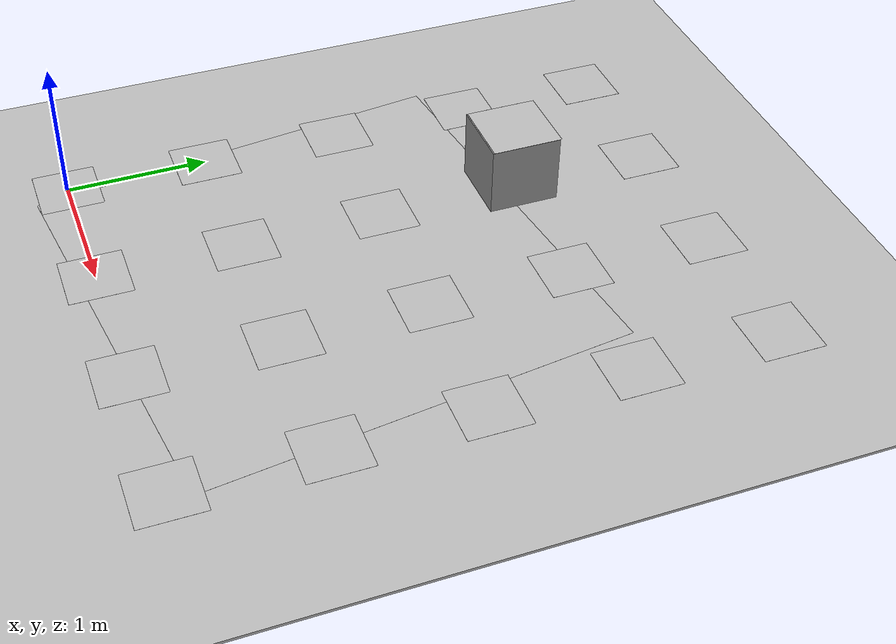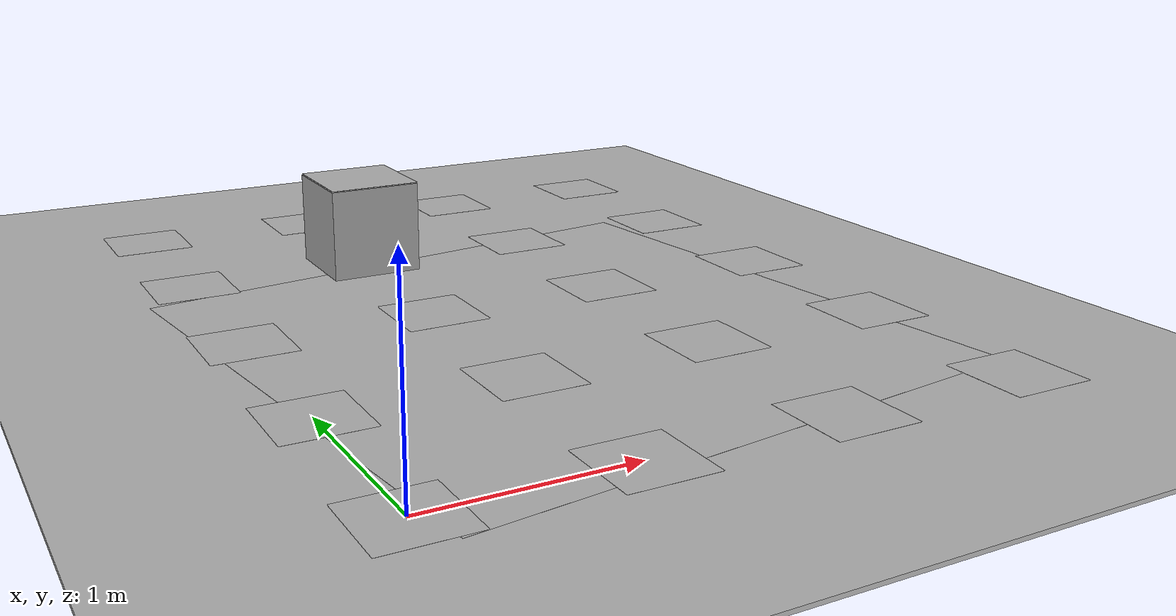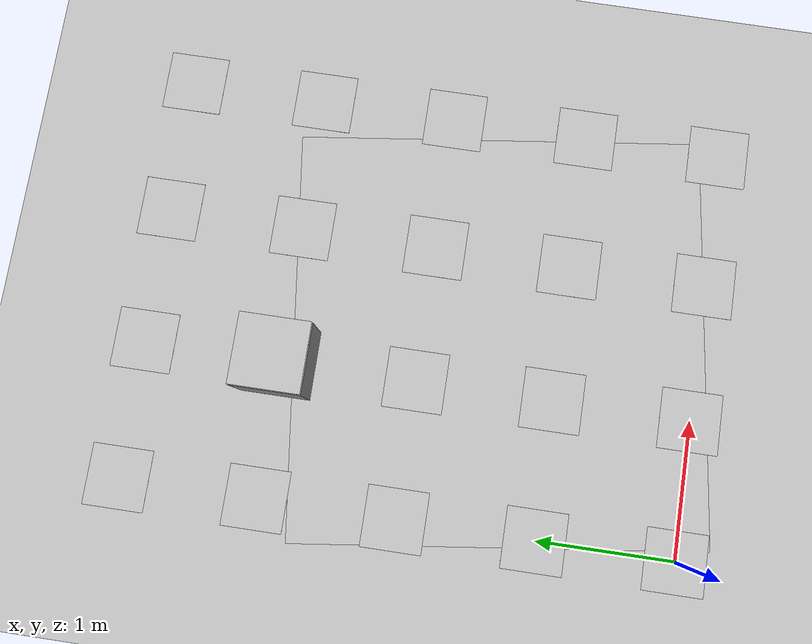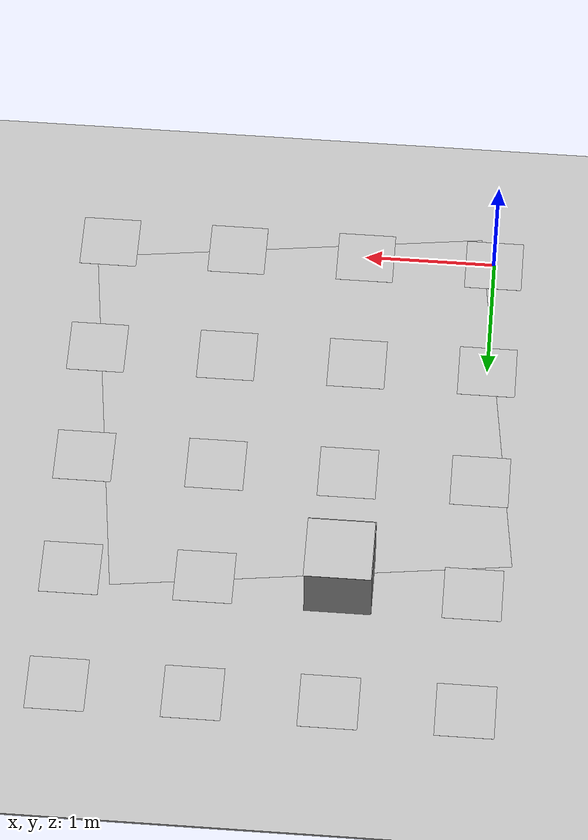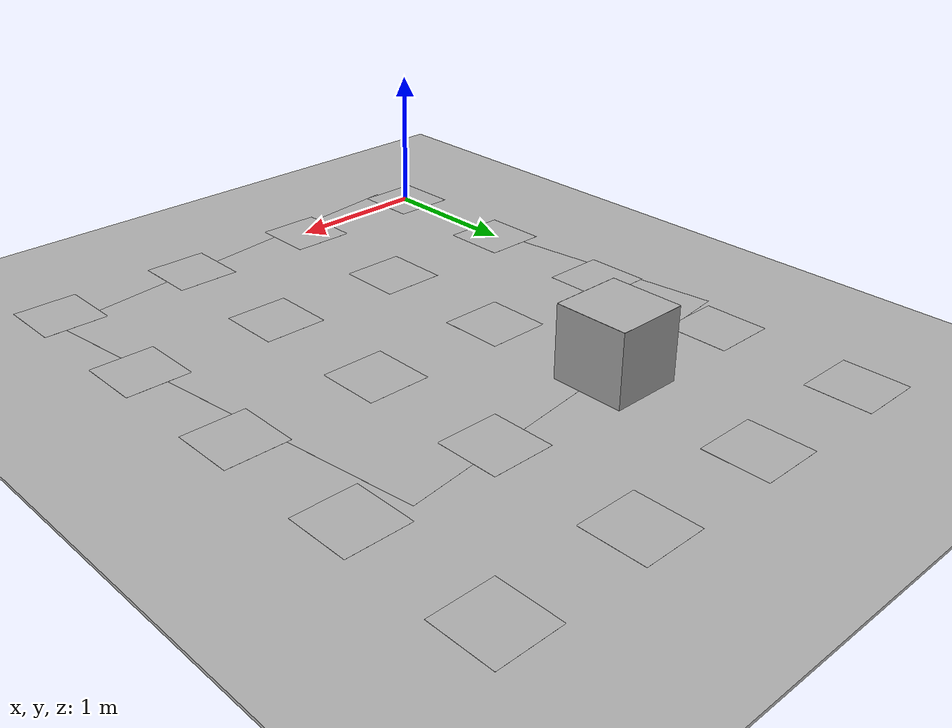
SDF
<sdf version="1.7">
 <world name="default">
  <model name="aruco_2_19">
   <static>1</static>
   <link name="aruco_2_19_link">
    <visual name="visual_marker_2_143">
     <pose>0 0 0 0 -0 1.5708</pose>
     <cast_shadows>0</cast_shadows>
     <geometry><box><size>0.44 0.44 0.001</size></box></geometry>
     <material>
      <script>
       <uri>model://aruco_nto_map_txt/materials/scripts</uri>
       <uri>model://aruco_nto_map_txt/materials/textures</uri>
       <name>aruco/marker_2_143</name>
      </script>
     </material>
    </visual>
    <visual name="visual_marker_2_142">
     <pose>1 0 0 0 -0 1.5708</pose>
     <cast_shadows>0</cast_shadows>
     <geometry><box><size>0.44 0.44 0.001</size></box></geometry>
     <material>
      <script>
       <uri>model://aruco_nto_map_txt/materials/scripts</uri>
       <uri>model://aruco_nto_map_txt/materials/textures</uri>
       <name>aruco/marker_2_142</name>
      </script>
     </material>
    </visual>
    <visual name="visual_marker_2_147">
     <pose>2 0 0 0 -0 1.5708</pose>
     <cast_shadows>0</cast_shadows>
     <geometry><box><size>0.44 0.44 0.001</size></box></geometry>
     <material>
      <script>
       <uri>model://aruco_nto_map_txt/materials/scripts</uri>
       <uri>model://aruco_nto_map_txt/materials/textures</uri>
       <name>aruco/marker_2_147</name>
      </script>
     </material>
    </visual>
    <visual name="visual_marker_2_128">
     <pose>3 0 0 0 -0 1.5708</pose>
     <cast_shadows>0</cast_shadows>
     <geometry><box><size>0.44 0.44 0.001</size></box></geometry>
     <material>
      <script>
       <uri>model://aruco_nto_map_txt/materials/scripts</uri>
       <uri>model://aruco_nto_map_txt/materials/textures</uri>
       <name>aruco/marker_2_128</name>
      </script>
     </material>
    </visual>
    <visual name="visual_marker_2_144">
     <pose>0 1 0 0 -0 1.5708</pose>
     <cast_shadows>0</cast_shadows>
     <geometry><box><size>0.44 0.44 0.001</size></box></geometry>
     <material>
      <script>
       <uri>model://aruco_nto_map_txt/materials/scripts</uri>
       <uri>model://aruco_nto_map_txt/materials/textures</uri>
       <name>aruco/marker_2_144</name>
      </script>
     </material>
    </visual>
    <visual name="visual_marker_2_157">
     <pose>1 1 0 0 -0 1.5708</pose>
     <cast_shadows>0</cast_shadows>
     <geometry><box><size>0.44 0.44 0.001</size></box></geometry>
     <material>
      <script>
       <uri>model://aruco_nto_map_txt/materials/scripts</uri>
       <uri>model://aruco_nto_map_txt/materials/textures</uri>
       <name>aruco/marker_2_157</name>
      </script>
     </material>
    </visual>
    <visual name="visual_marker_2_158">
     <pose>2 1 0 0 -0 1.5708</pose>
     <cast_shadows>0</cast_shadows>
     <geometry><box><size>0.44 0.44 0.001</size></box></geometry>
     <material>
      <script>
       <uri>model://aruco_nto_map_txt/materials/scripts</uri>
       <uri>model://aruco_nto_map_txt/materials/textures</uri>
       <name>aruco/marker_2_158</name>
      </script>
     </material>
    </visual>
    <visual name="visual_marker_2_125">
     <pose>3 1 0 0 -0 1.5708</pose>
     <cast_shadows>0</cast_shadows>
     <geometry><box><size>0.44 0.44 0.001</size></box></geometry>
     <material>
      <script>
       <uri>model://aruco_nto_map_txt/materials/scripts</uri>
       <uri>model://aruco_nto_map_txt/materials/textures</uri>
       <name>aruco/marker_2_125</name>
      </script>
     </material>
    </visual>
    <visual name="visual_marker_2_145">
     <pose>0 2 0 0 -0 1.5708</pose>
     <cast_shadows>0</cast_shadows>
     <geometry><box><size>0.44 0.44 0.001</size></box></geometry>
     <material>
      <script>
       <uri>model://aruco_nto_map_txt/materials/scripts</uri>
       <uri>model://aruco_nto_map_txt/materials/textures</uri>
       <name>aruco/marker_2_145</name>
      </script>
     </material>
    </visual>
    <visual name="visual_marker_2_146">
     <pose>1 2 0 0 -0 1.5708</pose>
     <cast_shadows>0</cast_shadows>
     <geometry><box><size>0.44 0.44 0.001</size></box></geometry>
     <material>
      <script>
       <uri>model://aruco_nto_map_txt/materials/scripts</uri>
       <uri>model://aruco_nto_map_txt/materials/textures</uri>
       <name>aruco/marker_2_146</name>
      </script>
     </material>
    </visual>
    <visual name="visual_marker_2_127">
     <pose>2 2 0 0 -0 1.5708</pose>
     <cast_shadows>0</cast_shadows>
     <geometry><box><size>0.44 0.44 0.001</size></box></geometry>
     <material>
      <script>
       <uri>model://aruco_nto_map_txt/materials/scripts</uri>
       <uri>model://aruco_nto_map_txt/materials/textures</uri>
       <name>aruco/marker_2_127</name>
      </script>
     </material>
    </visual>
    <visual name="visual_marker_2_126">
     <pose>3 2 0 0 -0 1.5708</pose>
     <cast_shadows>0</cast_shadows>
     <geometry><box><size>0.44 0.44 0.001</size></box></geometry>
     <material>
      <script>
       <uri>model://aruco_nto_map_txt/materials/scripts</uri>
       <uri>model://aruco_nto_map_txt/materials/textures</uri>
       <name>aruco/marker_2_126</name>
      </script>
     </material>
    </visual>
    <visual name="visual_marker_2_138">
     <pose>0 3 0 0 -0 1.5708</pose>
     <cast_shadows>0</cast_shadows>
     <geometry><box><size>0.44 0.44 0.001</size></box></geometry>
     <material>
      <script>
       <uri>model://aruco_nto_map_txt/materials/scripts</uri>
       <uri>model://aruco_nto_map_txt/materials/textures</uri>
       <name>aruco/marker_2_138</name>
      </script>
     </material>
    </visual>
    <visual name="visual_marker_2_160">
     <pose>2 3 0 0 -0 1.5708</pose>
     <cast_shadows>0</cast_shadows>
     <geometry><box><size>0.44 0.44 0.001</size></box></geometry>
     <material>
      <script>
       <uri>model://aruco_nto_map_txt/materials/scripts</uri>
       <uri>model://aruco_nto_map_txt/materials/textures</uri>
       <name>aruco/marker_2_160</name>
      </script>
     </material>
    </visual>
    <visual name="visual_marker_2_155">
     <pose>3 3 0 0 -0 1.5708</pose>
     <cast_shadows>0</cast_shadows>
     <geometry><box><size>0.44 0.44 0.001</size></box></geometry>
     <material>
      <script>
       <uri>model://aruco_nto_map_txt/materials/scripts</uri>
       <uri>model://aruco_nto_map_txt/materials/textures</uri>
       <name>aruco/marker_2_155</name>
      </script>
     </material>
    </visual>
    <visual name="visual_marker_2_139">
     <pose>0 4 0 0 -0 1.5708</pose>
     <cast_shadows>0</cast_shadows>
     <geometry><box><size>0.44 0.44 0.001</size></box></geometry>
     <material>
      <script>
       <uri>model://aruco_nto_map_txt/materials/scripts</uri>
       <uri>model://aruco_nto_map_txt/materials/textures</uri>
       <name>aruco/marker_2_139</name>
      </script>
     </material>
    </visual>
    <visual name="visual_marker_2_148">
     <pose>1 4 0 0 -0 1.5708</pose>
     <cast_shadows>0</cast_shadows>
     <geometry><box><size>0.44 0.44 0.001</size></box></geometry>
     <material>
      <script>
       <uri>model://aruco_nto_map_txt/materials/scripts</uri>
       <uri>model://aruco_nto_map_txt/materials/textures</uri>
       <name>aruco/marker_2_148</name>
      </script>
     </material>
    </visual>
    <visual name="visual_marker_2_156">
     <pose>2 4 0 0 -0 1.5708</pose>
     <cast_shadows>0</cast_shadows>
     <geometry><box><size>0.44 0.44 0.001</size></box></geometry>
     <material>
      <script>
       <uri>model://aruco_nto_map_txt/materials/scripts</uri>
       <uri>model://aruco_nto_map_txt/materials/textures</uri>
       <name>aruco/marker_2_156</name>
      </script>
     </material>
    </visual>
    <visual name="visual_marker_2_159">
     <pose>3 4 0 0 -0 1.5708</pose>
     <cast_shadows>0</cast_shadows>
     <geometry><box><size>0.44 0.44 0.001</size></box></geometry>
     <material>
      <script>
       <uri>model://aruco_nto_map_txt/materials/scripts</uri>
       <uri>model://aruco_nto_map_txt/materials/textures</uri>
       <name>aruco/marker_2_159</name>
      </script>
     </material>
    </visual>
   </link>
  </model>
  <model name="aruco_2_19">
   <static>1</static>
   <link name="aruco_2_19_link">
    <visual name="visual_marker_2_143">
     <pose>0 0 0 0 -0 1.5708</pose>
     <cast_shadows>0</cast_shadows>
     <geometry><box><size>0.44 0.44 0.001</size></box></geometry>
     <material>
      <script>
       <uri>model://aruco_nto_map_txt/materials/scripts</uri>
       <uri>model://aruco_nto_map_txt/materials/textures</uri>
       <name>aruco/marker_2_143</name>
      </script>
     </material>
    </visual>
    <visual name="visual_marker_2_142">
     <pose>1 0 0 0 -0 1.5708</pose>
     <cast_shadows>0</cast_shadows>
     <geometry><box><size>0.44 0.44 0.001</size></box></geometry>
     <material>
      <script>
       <uri>model://aruco_nto_map_txt/materials/scripts</uri>
       <uri>model://aruco_nto_map_txt/materials/textures</uri>
       <name>aruco/marker_2_142</name>
      </script>
     </material>
    </visual>
    <visual name="visual_marker_2_147">
     <pose>2 0 0 0 -0 1.5708</pose>
     <cast_shadows>0</cast_shadows>
     <geometry><box><size>0.44 0.44 0.001</size></box></geometry>
     <material>
      <script>
       <uri>model://aruco_nto_map_txt/materials/scripts</uri>
       <uri>model://aruco_nto_map_txt/materials/textures</uri>
       <name>aruco/marker_2_147</name>
      </script>
     </material>
    </visual>
    <visual name="visual_marker_2_128">
     <pose>3 0 0 0 -0 1.5708</pose>
     <cast_shadows>0</cast_shadows>
     <geometry><box><size>0.44 0.44 0.001</size></box></geometry>
     <material>
      <script>
       <uri>model://aruco_nto_map_txt/materials/scripts</uri>
       <uri>model://aruco_nto_map_txt/materials/textures</uri>
       <name>aruco/marker_2_128</name>
      </script>
     </material>
    </visual>
    <visual name="visual_marker_2_144">
     <pose>0 1 0 0 -0 1.5708</pose>
     <cast_shadows>0</cast_shadows>
     <geometry><box><size>0.44 0.44 0.001</size></box></geometry>
     <material>
      <script>
       <uri>model://aruco_nto_map_txt/materials/scripts</uri>
       <uri>model://aruco_nto_map_txt/materials/textures</uri>
       <name>aruco/marker_2_144</name>
      </script>
     </material>
    </visual>
    <visual name="visual_marker_2_157">
     <pose>1 1 0 0 -0 1.5708</pose>
     <cast_shadows>0</cast_shadows>
     <geometry><box><size>0.44 0.44 0.001</size></box></geometry>
     <material>
      <script>
       <uri>model://aruco_nto_map_txt/materials/scripts</uri>
       <uri>model://aruco_nto_map_txt/materials/textures</uri>
       <name>aruco/marker_2_157</name>
      </script>
     </material>
    </visual>
    <visual name="visual_marker_2_158">
     <pose>2 1 0 0 -0 1.5708</pose>
     <cast_shadows>0</cast_shadows>
     <geometry><box><size>0.44 0.44 0.001</size></box></geometry>
     <material>
      <script>
       <uri>model://aruco_nto_map_txt/materials/scripts</uri>
       <uri>model://aruco_nto_map_txt/materials/textures</uri>
       <name>aruco/marker_2_158</name>
      </script>
     </material>
    </visual>
    <visual name="visual_marker_2_125">
     <pose>3 1 0 0 -0 1.5708</pose>
     <cast_shadows>0</cast_shadows>
     <geometry><box><size>0.44 0.44 0.001</size></box></geometry>
     <material>
      <script>
       <uri>model://aruco_nto_map_txt/materials/scripts</uri>
       <uri>model://aruco_nto_map_txt/materials/textures</uri>
       <name>aruco/marker_2_125</name>
      </script>
     </material>
    </visual>
    <visual name="visual_marker_2_145">
     <pose>0 2 0 0 -0 1.5708</pose>
     <cast_shadows>0</cast_shadows>
     <geometry><box><size>0.44 0.44 0.001</size></box></geometry>
     <material>
      <script>
       <uri>model://aruco_nto_map_txt/materials/scripts</uri>
       <uri>model://aruco_nto_map_txt/materials/textures</uri>
       <name>aruco/marker_2_145</name>
      </script>
     </material>
    </visual>
    <visual name="visual_marker_2_146">
     <pose>1 2 0 0 -0 1.5708</pose>
     <cast_shadows>0</cast_shadows>
     <geometry><box><size>0.44 0.44 0.001</size></box></geometry>
     <material>
      <script>
       <uri>model://aruco_nto_map_txt/materials/scripts</uri>
       <uri>model://aruco_nto_map_txt/materials/textures</uri>
       <name>aruco/marker_2_146</name>
      </script>
     </material>
    </visual>
    <visual name="visual_marker_2_127">
     <pose>2 2 0 0 -0 1.5708</pose>
     <cast_shadows>0</cast_shadows>
     <geometry><box><size>0.44 0.44 0.001</size></box></geometry>
     <material>
      <script>
       <uri>model://aruco_nto_map_txt/materials/scripts</uri>
       <uri>model://aruco_nto_map_txt/materials/textures</uri>
       <name>aruco/marker_2_127</name>
      </script>
     </material>
    </visual>
    <visual name="visual_marker_2_126">
     <pose>3 2 0 0 -0 1.5708</pose>
     <cast_shadows>0</cast_shadows>
     <geometry><box><size>0.44 0.44 0.001</size></box></geometry>
     <material>
      <script>
       <uri>model://aruco_nto_map_txt/materials/scripts</uri>
       <uri>model://aruco_nto_map_txt/materials/textures</uri>
       <name>aruco/marker_2_126</name>
      </script>
     </material>
    </visual>
    <visual name="visual_marker_2_138">
     <pose>0 3 0 0 -0 1.5708</pose>
     <cast_shadows>0</cast_shadows>
     <geometry><box><size>0.44 0.44 0.001</size></box></geometry>
     <material>
      <script>
       <uri>model://aruco_nto_map_txt/materials/scripts</uri>
       <uri>model://aruco_nto_map_txt/materials/textures</uri>
       <name>aruco/marker_2_138</name>
      </script>
     </material>
    </visual>
    <visual name="visual_marker_2_160">
     <pose>2 3 0 0 -0 1.5708</pose>
     <cast_shadows>0</cast_shadows>
     <geometry><box><size>0.44 0.44 0.001</size></box></geometry>
     <material>
      <script>
       <uri>model://aruco_nto_map_txt/materials/scripts</uri>
       <uri>model://aruco_nto_map_txt/materials/textures</uri>
       <name>aruco/marker_2_160</name>
      </script>
     </material>
    </visual>
    <visual name="visual_marker_2_155">
     <pose>3 3 0 0 -0 1.5708</pose>
     <cast_shadows>0</cast_shadows>
     <geometry><box><size>0.44 0.44 0.001</size></box></geometry>
     <material>
      <script>
       <uri>model://aruco_nto_map_txt/materials/scripts</uri>
       <uri>model://aruco_nto_map_txt/materials/textures</uri>
       <name>aruco/marker_2_155</name>
      </script>
     </material>
    </visual>
    <visual name="visual_marker_2_139">
     <pose>0 4 0 0 -0 1.5708</pose>
     <cast_shadows>0</cast_shadows>
     <geometry><box><size>0.44 0.44 0.001</size></box></geometry>
     <material>
      <script>
       <uri>model://aruco_nto_map_txt/materials/scripts</uri>
       <uri>model://aruco_nto_map_txt/materials/textures</uri>
       <name>aruco/marker_2_139</name>
      </script>
     </material>
    </visual>
    <visual name="visual_marker_2_148">
     <pose>1 4 0 0 -0 1.5708</pose>
     <cast_shadows>0</cast_shadows>
     <geometry><box><size>0.44 0.44 0.001</size></box></geometry>
     <material>
      <script>
       <uri>model://aruco_nto_map_txt/materials/scripts</uri>
       <uri>model://aruco_nto_map_txt/materials/textures</uri>
       <name>aruco/marker_2_148</name>
      </script>
     </material>
    </visual>
    <visual name="visual_marker_2_156">
     <pose>2 4 0 0 -0 1.5708</pose>
     <cast_shadows>0</cast_shadows>
     <geometry><box><size>0.44 0.44 0.001</size></box></geometry>
     <material>
      <script>
       <uri>model://aruco_nto_map_txt/materials/scripts</uri>
       <uri>model://aruco_nto_map_txt/materials/textures</uri>
       <name>aruco/marker_2_156</name>
      </script>
     </material>
    </visual>
    <visual name="visual_marker_2_159">
     <pose>3 4 0 0 -0 1.5708</pose>
     <cast_shadows>0</cast_shadows>
     <geometry><box><size>0.44 0.44 0.001</size></box></geometry>
     <material>
      <script>
       <uri>model://aruco_nto_map_txt/materials/scripts</uri>
       <uri>model://aruco_nto_map_txt/materials/textures</uri>
       <name>aruco/marker_2_159</name>
      </script>
     </material>
    </visual>
   </link>
  </model>
  <light name="sun" type="directional">
   <pose>0 0 10 0 -0 0</pose>
   <diffuse>0.8 0.8 0.8 1</diffuse>
   <specular>0.2 0.2 0.2 1</specular>
   <attenuation>
    <range>1000</range>
    <constant>0.9</constant>
    <linear>0.01</linear>
    <quadratic>0.001</quadratic>
   </attenuation>
   <direction>-0.5 0.1 -0.9</direction>
   <spot><inner_angle>0</inner_angle><outer_angle>0</outer_angle><falloff>0</falloff></spot>
  </light>
  <model name="parquet_plane">
   <static>1</static>
   <link name="link">
    <collision name="collision"><geometry><box><size>200 200 0.02</size></box></geometry></collision>
    <visual name="visual">
     <cast_shadows>0</cast_shadows>
     <geometry><box><size>200 200 0.02</size></box></geometry>
     <material>
      <script>
       <uri>model://parquet_plane/materials/scripts</uri>
       <uri>model://parquet_plane/materials/textures</uri>
       <name>parquet</name>
      </script>
     </material>
    </visual>
   </link>
   <pose>0 0 -0.01 0 -0 0</pose>
  </model>
  <scene>
   <ambient>0.8 0.8 0.8 1</ambient>
   <background>0.8 0.9 1 1</background>
   <shadows>0</shadows>
   <grid>0</grid>
   <origin_visual>0</origin_visual>
  </scene>
  <physics name="default_physics" default="0" type="ode">
   <ode>
    <solver>
     <type>quick</type>
     <iters>10</iters>
     <sor>1.3</sor>
     <use_dynamic_moi_rescaling>0</use_dynamic_moi_rescaling>
    </solver>
    <constraints>
     <cfm>0</cfm>
     <erp>0.2</erp>
     <contact_max_correcting_vel>100</contact_max_correcting_vel>
     <contact_surface_layer>0.001</contact_surface_layer>
    </constraints>
   </ode>
   <max_step_size>0.004</max_step_size>
   <real_time_factor>1</real_time_factor>
   <real_time_update_rate>250</real_time_update_rate>
  </physics>
  <gravity>0 0 -9.8066</gravity>
  <magnetic_field>6e-06 2.3e-05 -4.2e-05</magnetic_field>
  <atmosphere type="adiabatic"/>
  <spherical_coordinates>
   <surface_model>EARTH_WGS84</surface_model>
   <latitude_deg>0</latitude_deg>
   <longitude_deg>0</longitude_deg>
   <elevation>0</elevation>
   <heading_deg>0</heading_deg>
  </spherical_coordinates>
  <model name="aruco_2_1">
   <static>1</static>
   <link name="aruco_2_1_link">
    <visual name="visual_marker_2_1">
     <pose>0 0 0 0 -0 1.5708</pose>
     <cast_shadows>0</cast_shadows>
     <geometry><box><size>3 3 0.001</size></box></geometry>
     <material>
      <script>
       <uri>model://aruco_2_1/materials/scripts</uri>
       <uri>model://aruco_2_1/materials/textures</uri>
       <name>aruco/marker_2_1</name>
      </script>
     </material>
    </visual>
   </link>
   <pose>1.40294 1.44321 -0.000163 0 0 -1.44259</pose>
  </model>
  <model name="box">
   <link name="link">
    <inertial>
     <mass>1</mass>
     <inertia>
      <ixx>0.166667</ixx>
      <ixy>0</ixy>
      <ixz>0</ixz>
      <iyy>0.166667</iyy>
      <iyz>0</iyz>
      <izz>0.166667</izz>
     </inertia>
    </inertial>
    <visual name="visual">
     <geometry><box><size>0.5 0.5 0.5</size></box></geometry>
     <material>
      <script><name>Gazebo/Grey</name><uri>file://media/materials/scripts/gazebo.material</uri></script>
      <shader type="pixel"/>
     </material>
    </visual>
    <collision name="collision">
     <geometry><box><size>0.5 0.5 0.5</size></box></geometry>
     <surface>
      <friction>
       <ode><mu>1</mu><mu2>1</mu2><fdir1>0 0 0</fdir1><slip1>0</slip1><slip2>0</slip2></ode>
       <torsional>
        <coefficient>1</coefficient>
        <patch_radius>0</patch_radius>
        <surface_radius>0</surface_radius>
        <use_patch_radius>1</use_patch_radius>
        <ode><slip>0</slip></ode>
       </torsional>
      </friction>
      <bounce><restitution_coefficient>0</restitution_coefficient><threshold>1e+06</threshold></bounce>
      <contact>
       <collide_without_contact>0</collide_without_contact>
       <collide_without_contact_bitmask>1</collide_without_contact_bitmask>
       <collide_bitmask>1</collide_bitmask>
       <ode>
        <soft_cfm>0</soft_cfm>
        <soft_erp>0.2</soft_erp>
        <kp>1e+13</kp>
        <kd>1</kd>
        <max_vel>0.01</max_vel>
        <min_depth>0</min_depth>
       </ode>
       <bullet>
        <split_impulse>1</split_impulse>
        <split_impulse_penetration_threshold>-0.01</split_impulse_penetration_threshold>
        <soft_cfm>0</soft_cfm>
        <soft_erp>0.2</soft_erp>
        <kp>1e+13</kp>
        <kd>1</kd>
       </bullet>
      </contact>
     </surface>
    </collision>
   </link>
   <static>1</static>
   <pose>0.993241 2.98604 0.248528 0 -0 0</pose>
  </model>
  <model name="aruco_2_1_0">
   <static>1</static>
   <link name="aruco_2_1_link">
    <visual name="visual_marker_2_2">
     <pose>0 0 0 0 -0 1.5708</pose>
     <cast_shadows>0</cast_shadows>
     <geometry><box><size>0.5 0.5 0.001</size></box></geometry>
     <material>
      <script>
       <uri>model://aruco_2_2/materials/scripts</uri>
       <uri>model://aruco_2_2/materials/textures</uri>
       <name>aruco/marker_2_2</name>
      </script>
     </material>
    </visual>
   </link>
   <pose>0.999011 2.99304 0.502222 0 -0 0</pose>
  </model>
 </world>
</sdf>
